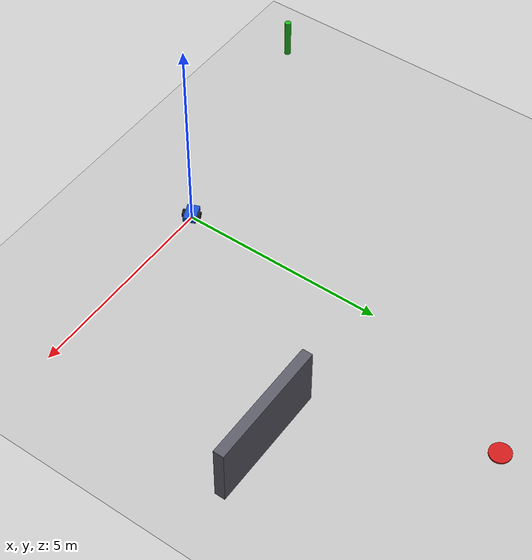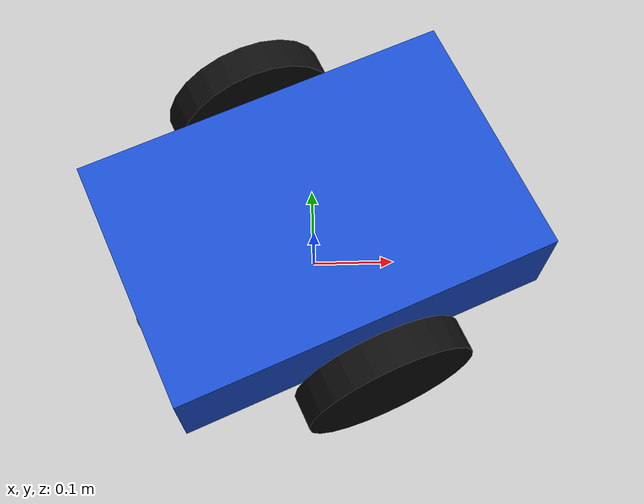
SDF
<?xml version="1.0" ?>
<sdf version="1.9">
  <world name="gfs_hidden_target_video">
    <physics name="default" type="ode">
      <max_step_size>0.005</max_step_size>
      <real_time_factor>0.25</real_time_factor>
    </physics>
    <plugin filename="gz-sim-physics-system" name="gz::sim::systems::Physics"/>
    <plugin filename="gz-sim-user-commands-system" name="gz::sim::systems::UserCommands"/>
    <plugin filename="gz-sim-scene-broadcaster-system" name="gz::sim::systems::SceneBroadcaster"/>
    <plugin filename="gz-sim-sensors-system" name="gz::sim::systems::Sensors">
      <render_engine>ogre2</render_engine>
    </plugin>

    <light type="directional" name="sun">
      <pose>0 0 10 0 0 0</pose>
      <diffuse>0.9 0.9 0.9 1</diffuse>
      <direction>-0.3 0.2 -0.9</direction>
    </light>

    <model name="ground_plane">
      <static>true</static>
      <link name="link">
        <collision name="collision">
          <geometry><plane><normal>0 0 1</normal><size>60 60</size></plane></geometry>
        </collision>
        <visual name="visual">
          <geometry><plane><normal>0 0 1</normal><size>60 60</size></plane></geometry>
          <material><ambient>0.75 0.75 0.75 1</ambient><diffuse>0.75 0.75 0.75 1</diffuse></material>
        </visual>
      </link>
    </model>

    <model name="capture_camera">
      <static>true</static>
      <pose>-0.2 4 12 0 1.5707963 0</pose>
      <link name="link">
        <sensor name="camera" type="camera">
          <camera>
            <horizontal_fov>1.4</horizontal_fov>
            <image><width>640</width><height>480</height></image>
            <clip><near>0.1</near><far>100</far></clip>
          </camera>
          <always_on>1</always_on>
          <update_rate>15</update_rate>
          <topic>camera</topic>
        </sensor>
      </link>
    </model>

    <model name="occluder">
      <static>true</static>
      <pose>4.1 5.0 0.75 0 0 0</pose>
      <link name="wall">
        <collision name="c"><geometry><box><size>3.0 0.25 1.5</size></box></geometry></collision>
        <visual name="v">
          <geometry><box><size>3.0 0.25 1.5</size></box></geometry>
          <material><ambient>0.35 0.35 0.4 1</ambient><diffuse>0.35 0.35 0.4 1</diffuse></material>
        </visual>
      </link>
    </model>

    <!-- Visual markers only: relay pole and target disc (no sensing). -->
    <model name="relay_marker">
      <static>true</static>
      <pose>-6.0 -1.5 0.5 0 0 0</pose>
      <link name="l">
        <visual name="v">
          <geometry><cylinder><radius>0.08</radius><length>1.0</length></cylinder></geometry>
          <material><ambient>0.1 0.7 0.1 1</ambient><diffuse>0.1 0.7 0.1 1</diffuse></material>
        </visual>
      </link>
    </model>
    <model name="target_marker">
      <static>true</static>
      <pose>1.5 9.0 0.02 0 0 0</pose>
      <link name="l">
        <visual name="v">
          <geometry><cylinder><radius>0.25</radius><length>0.04</length></cylinder></geometry>
          <material><ambient>0.8 0.1 0.1 1</ambient><diffuse>0.8 0.1 0.1 1</diffuse></material>
        </visual>
      </link>
    </model>

    <!-- Differential-drive vehicle with real wheel joints. -->
    <model name="gfs_vehicle">
      <pose>0 0 0.12 0 0 0.4</pose>
      <link name="chassis">
        <inertial>
          <mass>8.0</mass>
          <inertia><ixx>0.12</ixx><iyy>0.20</iyy><izz>0.26</izz></inertia>
        </inertial>
        <collision name="c"><geometry><box><size>0.45 0.30 0.12</size></box></geometry></collision>
        <visual name="v">
          <geometry><box><size>0.45 0.30 0.12</size></box></geometry>
          <material><ambient>0.1 0.3 0.8 1</ambient><diffuse>0.1 0.3 0.8 1</diffuse></material>
        </visual>
      </link>
      <link name="left_wheel">
        <pose relative_to="chassis">0 0.19 -0.02 -1.5707 0 0</pose>
        <inertial><mass>0.6</mass><inertia><ixx>0.002</ixx><iyy>0.002</iyy><izz>0.003</izz></inertia></inertial>
        <collision name="c">
          <geometry><cylinder><radius>0.10</radius><length>0.04</length></cylinder></geometry>
          <surface><friction><ode><mu>1.1</mu><mu2>0.9</mu2></ode></friction></surface>
        </collision>
        <visual name="v"><geometry><cylinder><radius>0.10</radius><length>0.04</length></cylinder></geometry>
          <material><ambient>0.05 0.05 0.05 1</ambient><diffuse>0.05 0.05 0.05 1</diffuse></material></visual>
      </link>
      <link name="right_wheel">
        <pose relative_to="chassis">0 -0.19 -0.02 -1.5707 0 0</pose>
        <inertial><mass>0.6</mass><inertia><ixx>0.002</ixx><iyy>0.002</iyy><izz>0.003</izz></inertia></inertial>
        <collision name="c">
          <geometry><cylinder><radius>0.10</radius><length>0.04</length></cylinder></geometry>
          <surface><friction><ode><mu>1.1</mu><mu2>0.9</mu2></ode></friction></surface>
        </collision>
        <visual name="v"><geometry><cylinder><radius>0.10</radius><length>0.04</length></cylinder></geometry>
          <material><ambient>0.05 0.05 0.05 1</ambient><diffuse>0.05 0.05 0.05 1</diffuse></material></visual>
      </link>
      <link name="caster">
        <pose relative_to="chassis">-0.18 0 -0.07 0 0 0</pose>
        <inertial><mass>0.2</mass><inertia><ixx>0.0004</ixx><iyy>0.0004</iyy><izz>0.0004</izz></inertia></inertial>
        <collision name="c">
          <geometry><sphere><radius>0.05</radius></sphere></geometry>
          <surface><friction><ode><mu>0.05</mu><mu2>0.05</mu2></ode></friction></surface>
        </collision>
        <visual name="v"><geometry><sphere><radius>0.05</radius></sphere></geometry></visual>
      </link>
      <joint name="left_wheel_joint" type="revolute">
        <parent>chassis</parent><child>left_wheel</child>
        <axis><xyz>0 0 1</xyz></axis>
      </joint>
      <joint name="right_wheel_joint" type="revolute">
        <parent>chassis</parent><child>right_wheel</child>
        <axis><xyz>0 0 1</xyz></axis>
      </joint>
      <joint name="caster_joint" type="ball">
        <parent>chassis</parent><child>caster</child>
      </joint>

      <!-- Physics wheel odometry (estimator input). -->
      <plugin filename="gz-sim-diff-drive-system" name="gz::sim::systems::DiffDrive">
        <left_joint>left_wheel_joint</left_joint>
        <right_joint>right_wheel_joint</right_joint>
        <wheel_separation>0.38</wheel_separation>
        <wheel_radius>0.10</wheel_radius>
        <topic>/model/gfs_vehicle/cmd_vel</topic>
        <odom_topic>/model/gfs_vehicle/odometry</odom_topic>
        <odom_publish_frequency>50</odom_publish_frequency>
      </plugin>
      <!-- Ground-truth channel (relay emulator + evaluator ONLY). -->
      <plugin filename="gz-sim-odometry-publisher-system" name="gz::sim::systems::OdometryPublisher">
        <odom_topic>/gfs/truth_odom</odom_topic>
        <odom_publish_frequency>50</odom_publish_frequency>
      </plugin>
    </model>
  </world>
</sdf>
